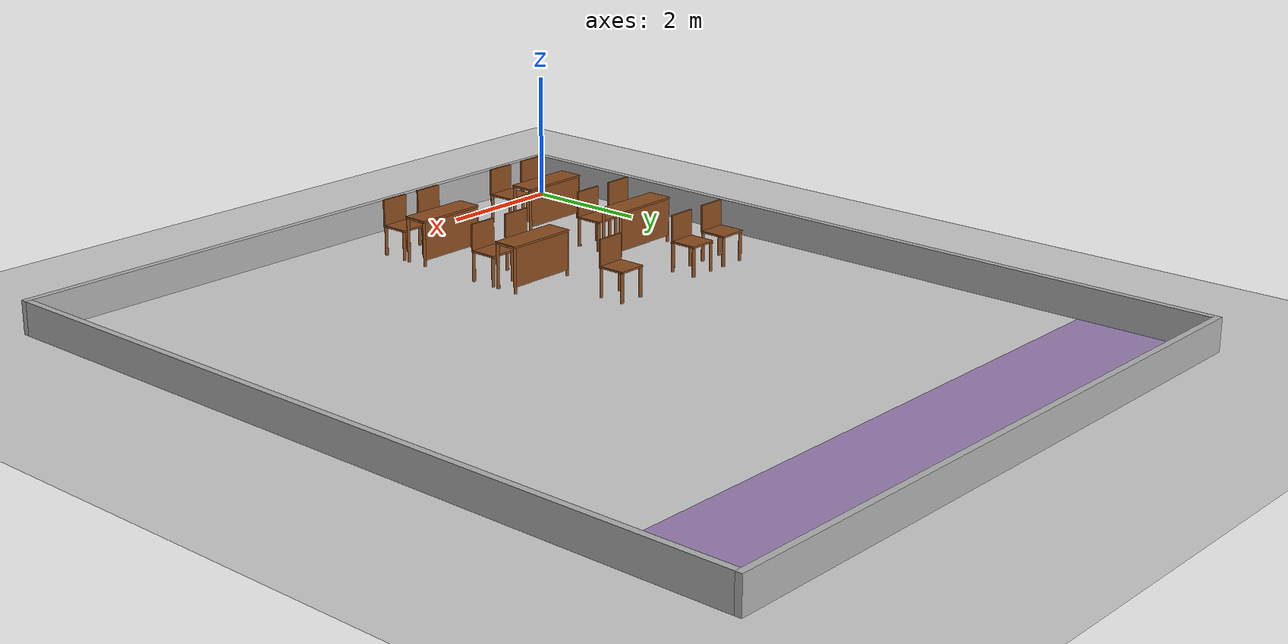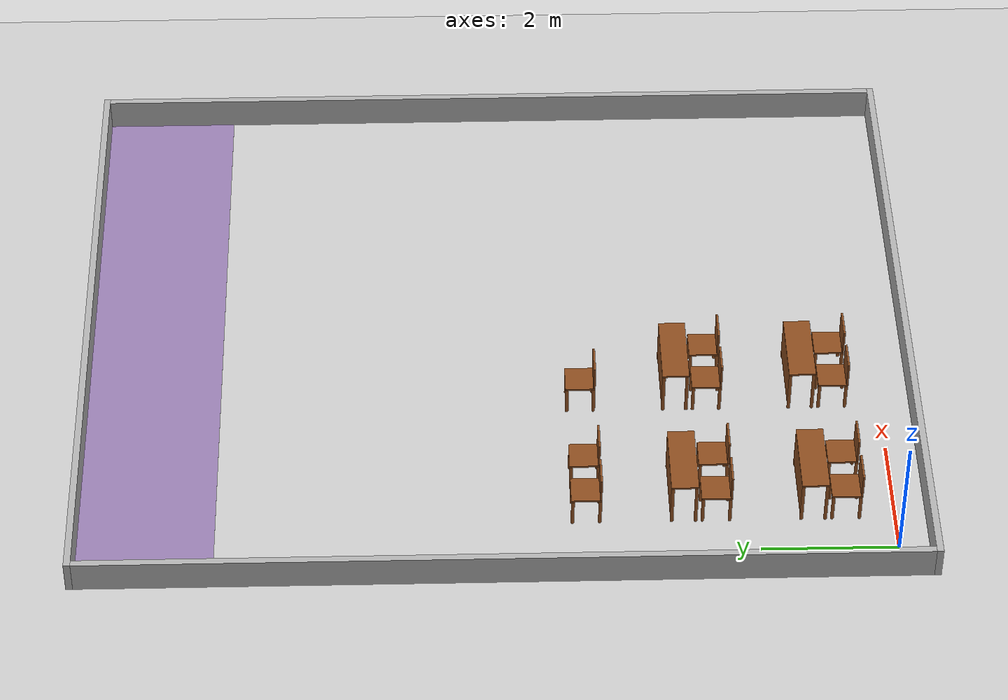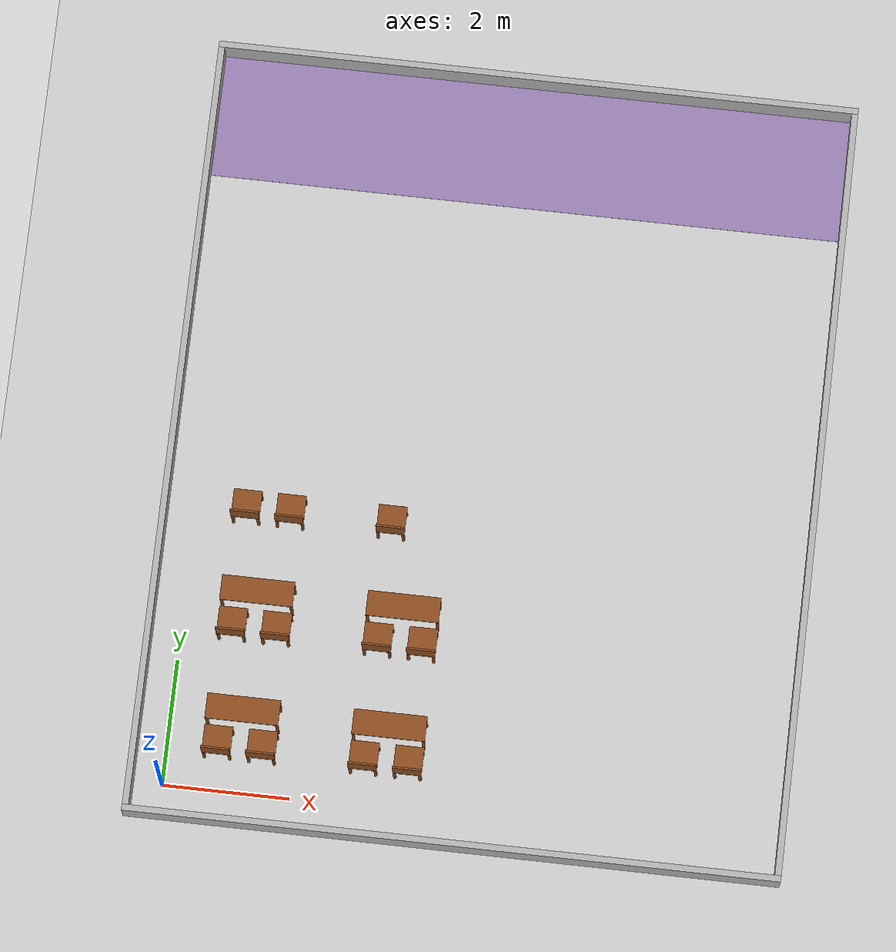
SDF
<sdf version="1.6">
 <world name="lecture_hall">
  <include><uri>model://ground_plane</uri></include>
  <include><uri>model://sun</uri></include>
  <model name="walls">
   <static>true</static>
   <link name="link">
    <collision name="c_s">
     <pose>4.600 -0.500 0.250 0 0 0</pose>
     <geometry><box><size>10.300 0.100 0.500</size></box></geometry>
    </collision>
    <visual name="v_s">
     <pose>4.600 -0.500 0.250 0 0 0</pose>
     <geometry><box><size>10.300 0.100 0.500</size></box></geometry>
     <material><ambient>0.6 0.6 0.6 1</ambient><diffuse>0.7 0.7 0.7 1</diffuse></material>
    </visual>
    <collision name="c_n">
     <pose>4.600 12.000 0.250 0 0 0</pose>
     <geometry><box><size>10.300 0.100 0.500</size></box></geometry>
    </collision>
    <visual name="v_n">
     <pose>4.600 12.000 0.250 0 0 0</pose>
     <geometry><box><size>10.300 0.100 0.500</size></box></geometry>
     <material><ambient>0.6 0.6 0.6 1</ambient><diffuse>0.7 0.7 0.7 1</diffuse></material>
    </visual>
    <collision name="c_w">
     <pose>-0.500 5.750 0.250 0 0 0</pose>
     <geometry><box><size>0.100 12.400 0.500</size></box></geometry>
    </collision>
    <visual name="v_w">
     <pose>-0.500 5.750 0.250 0 0 0</pose>
     <geometry><box><size>0.100 12.400 0.500</size></box></geometry>
     <material><ambient>0.6 0.6 0.6 1</ambient><diffuse>0.7 0.7 0.7 1</diffuse></material>
    </visual>
    <collision name="c_e">
     <pose>9.700 5.750 0.250 0 0 0</pose>
     <geometry><box><size>0.100 12.400 0.500</size></box></geometry>
    </collision>
    <visual name="v_e">
     <pose>9.700 5.750 0.250 0 0 0</pose>
     <geometry><box><size>0.100 12.400 0.500</size></box></geometry>
     <material><ambient>0.6 0.6 0.6 1</ambient><diffuse>0.7 0.7 0.7 1</diffuse></material>
    </visual>
    <visual name="v_stage">
     <pose>4.600 10.950 0.002 0 0 0</pose>
     <geometry><box><size>10.100 2.000 0.004</size></box></geometry>
     <material><ambient>0.5 0.4 0.6 1</ambient><diffuse>0.6 0.5 0.7 1</diffuse></material>
    </visual>
   </link>
  </model>
  <model name="chair_3_1_1">
   <static>true</static>
   <pose>0.800 4.525 0 0 0 0</pose>
   <link name="link">
    <collision name="c_leg0">
     <pose>-0.200 -0.200 0.225 0 0 0</pose>
     <geometry><cylinder><radius>0.025</radius><length>0.450</length></cylinder></geometry>
    </collision>
    <visual name="v_leg0">
     <pose>-0.200 -0.200 0.225 0 0 0</pose>
     <geometry><cylinder><radius>0.025</radius><length>0.450</length></cylinder></geometry>
     <material><ambient>0.45 0.25 0.1 1</ambient><diffuse>0.55 0.3 0.12 1</diffuse></material>
    </visual>
    <collision name="c_leg1">
     <pose>-0.200 0.200 0.225 0 0 0</pose>
     <geometry><cylinder><radius>0.025</radius><length>0.450</length></cylinder></geometry>
    </collision>
    <visual name="v_leg1">
     <pose>-0.200 0.200 0.225 0 0 0</pose>
     <geometry><cylinder><radius>0.025</radius><length>0.450</length></cylinder></geometry>
     <material><ambient>0.45 0.25 0.1 1</ambient><diffuse>0.55 0.3 0.12 1</diffuse></material>
    </visual>
    <collision name="c_leg2">
     <pose>0.200 -0.200 0.225 0 0 0</pose>
     <geometry><cylinder><radius>0.025</radius><length>0.450</length></cylinder></geometry>
    </collision>
    <visual name="v_leg2">
     <pose>0.200 -0.200 0.225 0 0 0</pose>
     <geometry><cylinder><radius>0.025</radius><length>0.450</length></cylinder></geometry>
     <material><ambient>0.45 0.25 0.1 1</ambient><diffuse>0.55 0.3 0.12 1</diffuse></material>
    </visual>
    <collision name="c_leg3">
     <pose>0.200 0.200 0.225 0 0 0</pose>
     <geometry><cylinder><radius>0.025</radius><length>0.450</length></cylinder></geometry>
    </collision>
    <visual name="v_leg3">
     <pose>0.200 0.200 0.225 0 0 0</pose>
     <geometry><cylinder><radius>0.025</radius><length>0.450</length></cylinder></geometry>
     <material><ambient>0.45 0.25 0.1 1</ambient><diffuse>0.55 0.3 0.12 1</diffuse></material>
    </visual>
    <collision name="c_seat">
     <pose>0.000 0.000 0.465 0 0 0</pose>
     <geometry><box><size>0.450 0.450 0.030</size></box></geometry>
    </collision>
    <visual name="v_seat">
     <pose>0.000 0.000 0.465 0 0 0</pose>
     <geometry><box><size>0.450 0.450 0.030</size></box></geometry>
     <material><ambient>0.45 0.25 0.1 1</ambient><diffuse>0.55 0.3 0.12 1</diffuse></material>
    </visual>
    <collision name="c_back">
     <pose>0.000 -0.210 0.680 0 0 0</pose>
     <geometry><box><size>0.450 0.030 0.400</size></box></geometry>
    </collision>
    <visual name="v_back">
     <pose>0.000 -0.210 0.680 0 0 0</pose>
     <geometry><box><size>0.450 0.030 0.400</size></box></geometry>
     <material><ambient>0.45 0.25 0.1 1</ambient><diffuse>0.55 0.3 0.12 1</diffuse></material>
    </visual>
   </link>
  </model>
  <model name="chair_3_1_2">
   <static>true</static>
   <pose>1.500 4.525 0 0 0 0</pose>
   <link name="link">
    <collision name="c_leg0">
     <pose>-0.200 -0.200 0.225 0 0 0</pose>
     <geometry><cylinder><radius>0.025</radius><length>0.450</length></cylinder></geometry>
    </collision>
    <visual name="v_leg0">
     <pose>-0.200 -0.200 0.225 0 0 0</pose>
     <geometry><cylinder><radius>0.025</radius><length>0.450</length></cylinder></geometry>
     <material><ambient>0.45 0.25 0.1 1</ambient><diffuse>0.55 0.3 0.12 1</diffuse></material>
    </visual>
    <collision name="c_leg1">
     <pose>-0.200 0.200 0.225 0 0 0</pose>
     <geometry><cylinder><radius>0.025</radius><length>0.450</length></cylinder></geometry>
    </collision>
    <visual name="v_leg1">
     <pose>-0.200 0.200 0.225 0 0 0</pose>
     <geometry><cylinder><radius>0.025</radius><length>0.450</length></cylinder></geometry>
     <material><ambient>0.45 0.25 0.1 1</ambient><diffuse>0.55 0.3 0.12 1</diffuse></material>
    </visual>
    <collision name="c_leg2">
     <pose>0.200 -0.200 0.225 0 0 0</pose>
     <geometry><cylinder><radius>0.025</radius><length>0.450</length></cylinder></geometry>
    </collision>
    <visual name="v_leg2">
     <pose>0.200 -0.200 0.225 0 0 0</pose>
     <geometry><cylinder><radius>0.025</radius><length>0.450</length></cylinder></geometry>
     <material><ambient>0.45 0.25 0.1 1</ambient><diffuse>0.55 0.3 0.12 1</diffuse></material>
    </visual>
    <collision name="c_leg3">
     <pose>0.200 0.200 0.225 0 0 0</pose>
     <geometry><cylinder><radius>0.025</radius><length>0.450</length></cylinder></geometry>
    </collision>
    <visual name="v_leg3">
     <pose>0.200 0.200 0.225 0 0 0</pose>
     <geometry><cylinder><radius>0.025</radius><length>0.450</length></cylinder></geometry>
     <material><ambient>0.45 0.25 0.1 1</ambient><diffuse>0.55 0.3 0.12 1</diffuse></material>
    </visual>
    <collision name="c_seat">
     <pose>0.000 0.000 0.465 0 0 0</pose>
     <geometry><box><size>0.450 0.450 0.030</size></box></geometry>
    </collision>
    <visual name="v_seat">
     <pose>0.000 0.000 0.465 0 0 0</pose>
     <geometry><box><size>0.450 0.450 0.030</size></box></geometry>
     <material><ambient>0.45 0.25 0.1 1</ambient><diffuse>0.55 0.3 0.12 1</diffuse></material>
    </visual>
    <collision name="c_back">
     <pose>0.000 -0.210 0.680 0 0 0</pose>
     <geometry><box><size>0.450 0.030 0.400</size></box></geometry>
    </collision>
    <visual name="v_back">
     <pose>0.000 -0.210 0.680 0 0 0</pose>
     <geometry><box><size>0.450 0.030 0.400</size></box></geometry>
     <material><ambient>0.45 0.25 0.1 1</ambient><diffuse>0.55 0.3 0.12 1</diffuse></material>
    </visual>
   </link>
  </model>
  <model name="chair_3_2_1">
   <static>true</static>
   <pose>3.100 4.525 0 0 0 0</pose>
   <link name="link">
    <collision name="c_leg0">
     <pose>-0.200 -0.200 0.225 0 0 0</pose>
     <geometry><cylinder><radius>0.025</radius><length>0.450</length></cylinder></geometry>
    </collision>
    <visual name="v_leg0">
     <pose>-0.200 -0.200 0.225 0 0 0</pose>
     <geometry><cylinder><radius>0.025</radius><length>0.450</length></cylinder></geometry>
     <material><ambient>0.45 0.25 0.1 1</ambient><diffuse>0.55 0.3 0.12 1</diffuse></material>
    </visual>
    <collision name="c_leg1">
     <pose>-0.200 0.200 0.225 0 0 0</pose>
     <geometry><cylinder><radius>0.025</radius><length>0.450</length></cylinder></geometry>
    </collision>
    <visual name="v_leg1">
     <pose>-0.200 0.200 0.225 0 0 0</pose>
     <geometry><cylinder><radius>0.025</radius><length>0.450</length></cylinder></geometry>
     <material><ambient>0.45 0.25 0.1 1</ambient><diffuse>0.55 0.3 0.12 1</diffuse></material>
    </visual>
    <collision name="c_leg2">
     <pose>0.200 -0.200 0.225 0 0 0</pose>
     <geometry><cylinder><radius>0.025</radius><length>0.450</length></cylinder></geometry>
    </collision>
    <visual name="v_leg2">
     <pose>0.200 -0.200 0.225 0 0 0</pose>
     <geometry><cylinder><radius>0.025</radius><length>0.450</length></cylinder></geometry>
     <material><ambient>0.45 0.25 0.1 1</ambient><diffuse>0.55 0.3 0.12 1</diffuse></material>
    </visual>
    <collision name="c_leg3">
     <pose>0.200 0.200 0.225 0 0 0</pose>
     <geometry><cylinder><radius>0.025</radius><length>0.450</length></cylinder></geometry>
    </collision>
    <visual name="v_leg3">
     <pose>0.200 0.200 0.225 0 0 0</pose>
     <geometry><cylinder><radius>0.025</radius><length>0.450</length></cylinder></geometry>
     <material><ambient>0.45 0.25 0.1 1</ambient><diffuse>0.55 0.3 0.12 1</diffuse></material>
    </visual>
    <collision name="c_seat">
     <pose>0.000 0.000 0.465 0 0 0</pose>
     <geometry><box><size>0.450 0.450 0.030</size></box></geometry>
    </collision>
    <visual name="v_seat">
     <pose>0.000 0.000 0.465 0 0 0</pose>
     <geometry><box><size>0.450 0.450 0.030</size></box></geometry>
     <material><ambient>0.45 0.25 0.1 1</ambient><diffuse>0.55 0.3 0.12 1</diffuse></material>
    </visual>
    <collision name="c_back">
     <pose>0.000 -0.210 0.680 0 0 0</pose>
     <geometry><box><size>0.450 0.030 0.400</size></box></geometry>
    </collision>
    <visual name="v_back">
     <pose>0.000 -0.210 0.680 0 0 0</pose>
     <geometry><box><size>0.450 0.030 0.400</size></box></geometry>
     <material><ambient>0.45 0.25 0.1 1</ambient><diffuse>0.55 0.3 0.12 1</diffuse></material>
    </visual>
   </link>
  </model>
  <model name="desk_4_1">
   <static>true</static>
   <pose>1.150 3.100 0 0 0 0</pose>
   <link name="link">
    <collision name="c_leg0">
     <pose>-0.550 -0.175 0.345 0 0 0</pose>
     <geometry><cylinder><radius>0.025</radius><length>0.690</length></cylinder></geometry>
    </collision>
    <visual name="v_leg0">
     <pose>-0.550 -0.175 0.345 0 0 0</pose>
     <geometry><cylinder><radius>0.025</radius><length>0.690</length></cylinder></geometry>
     <material><ambient>0.45 0.25 0.1 1</ambient><diffuse>0.55 0.3 0.12 1</diffuse></material>
    </visual>
    <collision name="c_leg1">
     <pose>-0.550 0.175 0.345 0 0 0</pose>
     <geometry><cylinder><radius>0.025</radius><length>0.690</length></cylinder></geometry>
    </collision>
    <visual name="v_leg1">
     <pose>-0.550 0.175 0.345 0 0 0</pose>
     <geometry><cylinder><radius>0.025</radius><length>0.690</length></cylinder></geometry>
     <material><ambient>0.45 0.25 0.1 1</ambient><diffuse>0.55 0.3 0.12 1</diffuse></material>
    </visual>
    <collision name="c_leg2">
     <pose>0.550 -0.175 0.345 0 0 0</pose>
     <geometry><cylinder><radius>0.025</radius><length>0.690</length></cylinder></geometry>
    </collision>
    <visual name="v_leg2">
     <pose>0.550 -0.175 0.345 0 0 0</pose>
     <geometry><cylinder><radius>0.025</radius><length>0.690</length></cylinder></geometry>
     <material><ambient>0.45 0.25 0.1 1</ambient><diffuse>0.55 0.3 0.12 1</diffuse></material>
    </visual>
    <collision name="c_leg3">
     <pose>0.550 0.175 0.345 0 0 0</pose>
     <geometry><cylinder><radius>0.025</radius><length>0.690</length></cylinder></geometry>
    </collision>
    <visual name="v_leg3">
     <pose>0.550 0.175 0.345 0 0 0</pose>
     <geometry><cylinder><radius>0.025</radius><length>0.690</length></cylinder></geometry>
     <material><ambient>0.45 0.25 0.1 1</ambient><diffuse>0.55 0.3 0.12 1</diffuse></material>
    </visual>
    <collision name="c_top">
     <pose>0.000 0.000 0.705 0 0 0</pose>
     <geometry><box><size>1.150 0.400 0.030</size></box></geometry>
    </collision>
    <visual name="v_top">
     <pose>0.000 0.000 0.705 0 0 0</pose>
     <geometry><box><size>1.150 0.400 0.030</size></box></geometry>
     <material><ambient>0.45 0.25 0.1 1</ambient><diffuse>0.55 0.3 0.12 1</diffuse></material>
    </visual>
    <collision name="c_panel">
     <pose>0.000 0.190 0.395 0 0 0</pose>
     <geometry><box><size>1.100 0.020 0.590</size></box></geometry>
    </collision>
    <visual name="v_panel">
     <pose>0.000 0.190 0.395 0 0 0</pose>
     <geometry><box><size>1.100 0.020 0.590</size></box></geometry>
     <material><ambient>0.45 0.25 0.1 1</ambient><diffuse>0.55 0.3 0.12 1</diffuse></material>
    </visual>
   </link>
  </model>
  <model name="chair_4_1_1">
   <static>true</static>
   <pose>0.800 2.625 0 0 0 0</pose>
   <link name="link">
    <collision name="c_leg0">
     <pose>-0.200 -0.200 0.225 0 0 0</pose>
     <geometry><cylinder><radius>0.025</radius><length>0.450</length></cylinder></geometry>
    </collision>
    <visual name="v_leg0">
     <pose>-0.200 -0.200 0.225 0 0 0</pose>
     <geometry><cylinder><radius>0.025</radius><length>0.450</length></cylinder></geometry>
     <material><ambient>0.45 0.25 0.1 1</ambient><diffuse>0.55 0.3 0.12 1</diffuse></material>
    </visual>
    <collision name="c_leg1">
     <pose>-0.200 0.200 0.225 0 0 0</pose>
     <geometry><cylinder><radius>0.025</radius><length>0.450</length></cylinder></geometry>
    </collision>
    <visual name="v_leg1">
     <pose>-0.200 0.200 0.225 0 0 0</pose>
     <geometry><cylinder><radius>0.025</radius><length>0.450</length></cylinder></geometry>
     <material><ambient>0.45 0.25 0.1 1</ambient><diffuse>0.55 0.3 0.12 1</diffuse></material>
    </visual>
    <collision name="c_leg2">
     <pose>0.200 -0.200 0.225 0 0 0</pose>
     <geometry><cylinder><radius>0.025</radius><length>0.450</length></cylinder></geometry>
    </collision>
    <visual name="v_leg2">
     <pose>0.200 -0.200 0.225 0 0 0</pose>
     <geometry><cylinder><radius>0.025</radius><length>0.450</length></cylinder></geometry>
     <material><ambient>0.45 0.25 0.1 1</ambient><diffuse>0.55 0.3 0.12 1</diffuse></material>
    </visual>
    <collision name="c_leg3">
     <pose>0.200 0.200 0.225 0 0 0</pose>
     <geometry><cylinder><radius>0.025</radius><length>0.450</length></cylinder></geometry>
    </collision>
    <visual name="v_leg3">
     <pose>0.200 0.200 0.225 0 0 0</pose>
     <geometry><cylinder><radius>0.025</radius><length>0.450</length></cylinder></geometry>
     <material><ambient>0.45 0.25 0.1 1</ambient><diffuse>0.55 0.3 0.12 1</diffuse></material>
    </visual>
    <collision name="c_seat">
     <pose>0.000 0.000 0.465 0 0 0</pose>
     <geometry><box><size>0.450 0.450 0.030</size></box></geometry>
    </collision>
    <visual name="v_seat">
     <pose>0.000 0.000 0.465 0 0 0</pose>
     <geometry><box><size>0.450 0.450 0.030</size></box></geometry>
     <material><ambient>0.45 0.25 0.1 1</ambient><diffuse>0.55 0.3 0.12 1</diffuse></material>
    </visual>
    <collision name="c_back">
     <pose>0.000 -0.210 0.680 0 0 0</pose>
     <geometry><box><size>0.450 0.030 0.400</size></box></geometry>
    </collision>
    <visual name="v_back">
     <pose>0.000 -0.210 0.680 0 0 0</pose>
     <geometry><box><size>0.450 0.030 0.400</size></box></geometry>
     <material><ambient>0.45 0.25 0.1 1</ambient><diffuse>0.55 0.3 0.12 1</diffuse></material>
    </visual>
   </link>
  </model>
  <model name="chair_4_1_2">
   <static>true</static>
   <pose>1.500 2.625 0 0 0 0</pose>
   <link name="link">
    <collision name="c_leg0">
     <pose>-0.200 -0.200 0.225 0 0 0</pose>
     <geometry><cylinder><radius>0.025</radius><length>0.450</length></cylinder></geometry>
    </collision>
    <visual name="v_leg0">
     <pose>-0.200 -0.200 0.225 0 0 0</pose>
     <geometry><cylinder><radius>0.025</radius><length>0.450</length></cylinder></geometry>
     <material><ambient>0.45 0.25 0.1 1</ambient><diffuse>0.55 0.3 0.12 1</diffuse></material>
    </visual>
    <collision name="c_leg1">
     <pose>-0.200 0.200 0.225 0 0 0</pose>
     <geometry><cylinder><radius>0.025</radius><length>0.450</length></cylinder></geometry>
    </collision>
    <visual name="v_leg1">
     <pose>-0.200 0.200 0.225 0 0 0</pose>
     <geometry><cylinder><radius>0.025</radius><length>0.450</length></cylinder></geometry>
     <material><ambient>0.45 0.25 0.1 1</ambient><diffuse>0.55 0.3 0.12 1</diffuse></material>
    </visual>
    <collision name="c_leg2">
     <pose>0.200 -0.200 0.225 0 0 0</pose>
     <geometry><cylinder><radius>0.025</radius><length>0.450</length></cylinder></geometry>
    </collision>
    <visual name="v_leg2">
     <pose>0.200 -0.200 0.225 0 0 0</pose>
     <geometry><cylinder><radius>0.025</radius><length>0.450</length></cylinder></geometry>
     <material><ambient>0.45 0.25 0.1 1</ambient><diffuse>0.55 0.3 0.12 1</diffuse></material>
    </visual>
    <collision name="c_leg3">
     <pose>0.200 0.200 0.225 0 0 0</pose>
     <geometry><cylinder><radius>0.025</radius><length>0.450</length></cylinder></geometry>
    </collision>
    <visual name="v_leg3">
     <pose>0.200 0.200 0.225 0 0 0</pose>
     <geometry><cylinder><radius>0.025</radius><length>0.450</length></cylinder></geometry>
     <material><ambient>0.45 0.25 0.1 1</ambient><diffuse>0.55 0.3 0.12 1</diffuse></material>
    </visual>
    <collision name="c_seat">
     <pose>0.000 0.000 0.465 0 0 0</pose>
     <geometry><box><size>0.450 0.450 0.030</size></box></geometry>
    </collision>
    <visual name="v_seat">
     <pose>0.000 0.000 0.465 0 0 0</pose>
     <geometry><box><size>0.450 0.450 0.030</size></box></geometry>
     <material><ambient>0.45 0.25 0.1 1</ambient><diffuse>0.55 0.3 0.12 1</diffuse></material>
    </visual>
    <collision name="c_back">
     <pose>0.000 -0.210 0.680 0 0 0</pose>
     <geometry><box><size>0.450 0.030 0.400</size></box></geometry>
    </collision>
    <visual name="v_back">
     <pose>0.000 -0.210 0.680 0 0 0</pose>
     <geometry><box><size>0.450 0.030 0.400</size></box></geometry>
     <material><ambient>0.45 0.25 0.1 1</ambient><diffuse>0.55 0.3 0.12 1</diffuse></material>
    </visual>
   </link>
  </model>
  <model name="desk_4_2">
   <static>true</static>
   <pose>3.450 3.100 0 0 0 0</pose>
   <link name="link">
    <collision name="c_leg0">
     <pose>-0.550 -0.175 0.345 0 0 0</pose>
     <geometry><cylinder><radius>0.025</radius><length>0.690</length></cylinder></geometry>
    </collision>
    <visual name="v_leg0">
     <pose>-0.550 -0.175 0.345 0 0 0</pose>
     <geometry><cylinder><radius>0.025</radius><length>0.690</length></cylinder></geometry>
     <material><ambient>0.45 0.25 0.1 1</ambient><diffuse>0.55 0.3 0.12 1</diffuse></material>
    </visual>
    <collision name="c_leg1">
     <pose>-0.550 0.175 0.345 0 0 0</pose>
     <geometry><cylinder><radius>0.025</radius><length>0.690</length></cylinder></geometry>
    </collision>
    <visual name="v_leg1">
     <pose>-0.550 0.175 0.345 0 0 0</pose>
     <geometry><cylinder><radius>0.025</radius><length>0.690</length></cylinder></geometry>
     <material><ambient>0.45 0.25 0.1 1</ambient><diffuse>0.55 0.3 0.12 1</diffuse></material>
    </visual>
    <collision name="c_leg2">
     <pose>0.550 -0.175 0.345 0 0 0</pose>
     <geometry><cylinder><radius>0.025</radius><length>0.690</length></cylinder></geometry>
    </collision>
    <visual name="v_leg2">
     <pose>0.550 -0.175 0.345 0 0 0</pose>
     <geometry><cylinder><radius>0.025</radius><length>0.690</length></cylinder></geometry>
     <material><ambient>0.45 0.25 0.1 1</ambient><diffuse>0.55 0.3 0.12 1</diffuse></material>
    </visual>
    <collision name="c_leg3">
     <pose>0.550 0.175 0.345 0 0 0</pose>
     <geometry><cylinder><radius>0.025</radius><length>0.690</length></cylinder></geometry>
    </collision>
    <visual name="v_leg3">
     <pose>0.550 0.175 0.345 0 0 0</pose>
     <geometry><cylinder><radius>0.025</radius><length>0.690</length></cylinder></geometry>
     <material><ambient>0.45 0.25 0.1 1</ambient><diffuse>0.55 0.3 0.12 1</diffuse></material>
    </visual>
    <collision name="c_top">
     <pose>0.000 0.000 0.705 0 0 0</pose>
     <geometry><box><size>1.150 0.400 0.030</size></box></geometry>
    </collision>
    <visual name="v_top">
     <pose>0.000 0.000 0.705 0 0 0</pose>
     <geometry><box><size>1.150 0.400 0.030</size></box></geometry>
     <material><ambient>0.45 0.25 0.1 1</ambient><diffuse>0.55 0.3 0.12 1</diffuse></material>
    </visual>
    <collision name="c_panel">
     <pose>0.000 0.190 0.395 0 0 0</pose>
     <geometry><box><size>1.100 0.020 0.590</size></box></geometry>
    </collision>
    <visual name="v_panel">
     <pose>0.000 0.190 0.395 0 0 0</pose>
     <geometry><box><size>1.100 0.020 0.590</size></box></geometry>
     <material><ambient>0.45 0.25 0.1 1</ambient><diffuse>0.55 0.3 0.12 1</diffuse></material>
    </visual>
   </link>
  </model>
  <model name="chair_4_2_1">
   <static>true</static>
   <pose>3.100 2.625 0 0 0 0</pose>
   <link name="link">
    <collision name="c_leg0">
     <pose>-0.200 -0.200 0.225 0 0 0</pose>
     <geometry><cylinder><radius>0.025</radius><length>0.450</length></cylinder></geometry>
    </collision>
    <visual name="v_leg0">
     <pose>-0.200 -0.200 0.225 0 0 0</pose>
     <geometry><cylinder><radius>0.025</radius><length>0.450</length></cylinder></geometry>
     <material><ambient>0.45 0.25 0.1 1</ambient><diffuse>0.55 0.3 0.12 1</diffuse></material>
    </visual>
    <collision name="c_leg1">
     <pose>-0.200 0.200 0.225 0 0 0</pose>
     <geometry><cylinder><radius>0.025</radius><length>0.450</length></cylinder></geometry>
    </collision>
    <visual name="v_leg1">
     <pose>-0.200 0.200 0.225 0 0 0</pose>
     <geometry><cylinder><radius>0.025</radius><length>0.450</length></cylinder></geometry>
     <material><ambient>0.45 0.25 0.1 1</ambient><diffuse>0.55 0.3 0.12 1</diffuse></material>
    </visual>
    <collision name="c_leg2">
     <pose>0.200 -0.200 0.225 0 0 0</pose>
     <geometry><cylinder><radius>0.025</radius><length>0.450</length></cylinder></geometry>
    </collision>
    <visual name="v_leg2">
     <pose>0.200 -0.200 0.225 0 0 0</pose>
     <geometry><cylinder><radius>0.025</radius><length>0.450</length></cylinder></geometry>
     <material><ambient>0.45 0.25 0.1 1</ambient><diffuse>0.55 0.3 0.12 1</diffuse></material>
    </visual>
    <collision name="c_leg3">
     <pose>0.200 0.200 0.225 0 0 0</pose>
     <geometry><cylinder><radius>0.025</radius><length>0.450</length></cylinder></geometry>
    </collision>
    <visual name="v_leg3">
     <pose>0.200 0.200 0.225 0 0 0</pose>
     <geometry><cylinder><radius>0.025</radius><length>0.450</length></cylinder></geometry>
     <material><ambient>0.45 0.25 0.1 1</ambient><diffuse>0.55 0.3 0.12 1</diffuse></material>
    </visual>
    <collision name="c_seat">
     <pose>0.000 0.000 0.465 0 0 0</pose>
     <geometry><box><size>0.450 0.450 0.030</size></box></geometry>
    </collision>
    <visual name="v_seat">
     <pose>0.000 0.000 0.465 0 0 0</pose>
     <geometry><box><size>0.450 0.450 0.030</size></box></geometry>
     <material><ambient>0.45 0.25 0.1 1</ambient><diffuse>0.55 0.3 0.12 1</diffuse></material>
    </visual>
    <collision name="c_back">
     <pose>0.000 -0.210 0.680 0 0 0</pose>
     <geometry><box><size>0.450 0.030 0.400</size></box></geometry>
    </collision>
    <visual name="v_back">
     <pose>0.000 -0.210 0.680 0 0 0</pose>
     <geometry><box><size>0.450 0.030 0.400</size></box></geometry>
     <material><ambient>0.45 0.25 0.1 1</ambient><diffuse>0.55 0.3 0.12 1</diffuse></material>
    </visual>
   </link>
  </model>
  <model name="chair_4_2_2">
   <static>true</static>
   <pose>3.800 2.625 0 0 0 0</pose>
   <link name="link">
    <collision name="c_leg0">
     <pose>-0.200 -0.200 0.225 0 0 0</pose>
     <geometry><cylinder><radius>0.025</radius><length>0.450</length></cylinder></geometry>
    </collision>
    <visual name="v_leg0">
     <pose>-0.200 -0.200 0.225 0 0 0</pose>
     <geometry><cylinder><radius>0.025</radius><length>0.450</length></cylinder></geometry>
     <material><ambient>0.45 0.25 0.1 1</ambient><diffuse>0.55 0.3 0.12 1</diffuse></material>
    </visual>
    <collision name="c_leg1">
     <pose>-0.200 0.200 0.225 0 0 0</pose>
     <geometry><cylinder><radius>0.025</radius><length>0.450</length></cylinder></geometry>
    </collision>
    <visual name="v_leg1">
     <pose>-0.200 0.200 0.225 0 0 0</pose>
     <geometry><cylinder><radius>0.025</radius><length>0.450</length></cylinder></geometry>
     <material><ambient>0.45 0.25 0.1 1</ambient><diffuse>0.55 0.3 0.12 1</diffuse></material>
    </visual>
    <collision name="c_leg2">
     <pose>0.200 -0.200 0.225 0 0 0</pose>
     <geometry><cylinder><radius>0.025</radius><length>0.450</length></cylinder></geometry>
    </collision>
    <visual name="v_leg2">
     <pose>0.200 -0.200 0.225 0 0 0</pose>
     <geometry><cylinder><radius>0.025</radius><length>0.450</length></cylinder></geometry>
     <material><ambient>0.45 0.25 0.1 1</ambient><diffuse>0.55 0.3 0.12 1</diffuse></material>
    </visual>
    <collision name="c_leg3">
     <pose>0.200 0.200 0.225 0 0 0</pose>
     <geometry><cylinder><radius>0.025</radius><length>0.450</length></cylinder></geometry>
    </collision>
    <visual name="v_leg3">
     <pose>0.200 0.200 0.225 0 0 0</pose>
     <geometry><cylinder><radius>0.025</radius><length>0.450</length></cylinder></geometry>
     <material><ambient>0.45 0.25 0.1 1</ambient><diffuse>0.55 0.3 0.12 1</diffuse></material>
    </visual>
    <collision name="c_seat">
     <pose>0.000 0.000 0.465 0 0 0</pose>
     <geometry><box><size>0.450 0.450 0.030</size></box></geometry>
    </collision>
    <visual name="v_seat">
     <pose>0.000 0.000 0.465 0 0 0</pose>
     <geometry><box><size>0.450 0.450 0.030</size></box></geometry>
     <material><ambient>0.45 0.25 0.1 1</ambient><diffuse>0.55 0.3 0.12 1</diffuse></material>
    </visual>
    <collision name="c_back">
     <pose>0.000 -0.210 0.680 0 0 0</pose>
     <geometry><box><size>0.450 0.030 0.400</size></box></geometry>
    </collision>
    <visual name="v_back">
     <pose>0.000 -0.210 0.680 0 0 0</pose>
     <geometry><box><size>0.450 0.030 0.400</size></box></geometry>
     <material><ambient>0.45 0.25 0.1 1</ambient><diffuse>0.55 0.3 0.12 1</diffuse></material>
    </visual>
   </link>
  </model>
  <model name="desk_5_1">
   <static>true</static>
   <pose>1.150 1.200 0 0 0 0</pose>
   <link name="link">
    <collision name="c_leg0">
     <pose>-0.550 -0.175 0.345 0 0 0</pose>
     <geometry><cylinder><radius>0.025</radius><length>0.690</length></cylinder></geometry>
    </collision>
    <visual name="v_leg0">
     <pose>-0.550 -0.175 0.345 0 0 0</pose>
     <geometry><cylinder><radius>0.025</radius><length>0.690</length></cylinder></geometry>
     <material><ambient>0.45 0.25 0.1 1</ambient><diffuse>0.55 0.3 0.12 1</diffuse></material>
    </visual>
    <collision name="c_leg1">
     <pose>-0.550 0.175 0.345 0 0 0</pose>
     <geometry><cylinder><radius>0.025</radius><length>0.690</length></cylinder></geometry>
    </collision>
    <visual name="v_leg1">
     <pose>-0.550 0.175 0.345 0 0 0</pose>
     <geometry><cylinder><radius>0.025</radius><length>0.690</length></cylinder></geometry>
     <material><ambient>0.45 0.25 0.1 1</ambient><diffuse>0.55 0.3 0.12 1</diffuse></material>
    </visual>
    <collision name="c_leg2">
     <pose>0.550 -0.175 0.345 0 0 0</pose>
     <geometry><cylinder><radius>0.025</radius><length>0.690</length></cylinder></geometry>
    </collision>
    <visual name="v_leg2">
     <pose>0.550 -0.175 0.345 0 0 0</pose>
     <geometry><cylinder><radius>0.025</radius><length>0.690</length></cylinder></geometry>
     <material><ambient>0.45 0.25 0.1 1</ambient><diffuse>0.55 0.3 0.12 1</diffuse></material>
    </visual>
    <collision name="c_leg3">
     <pose>0.550 0.175 0.345 0 0 0</pose>
     <geometry><cylinder><radius>0.025</radius><length>0.690</length></cylinder></geometry>
    </collision>
    <visual name="v_leg3">
     <pose>0.550 0.175 0.345 0 0 0</pose>
     <geometry><cylinder><radius>0.025</radius><length>0.690</length></cylinder></geometry>
     <material><ambient>0.45 0.25 0.1 1</ambient><diffuse>0.55 0.3 0.12 1</diffuse></material>
    </visual>
    <collision name="c_top">
     <pose>0.000 0.000 0.705 0 0 0</pose>
     <geometry><box><size>1.150 0.400 0.030</size></box></geometry>
    </collision>
    <visual name="v_top">
     <pose>0.000 0.000 0.705 0 0 0</pose>
     <geometry><box><size>1.150 0.400 0.030</size></box></geometry>
     <material><ambient>0.45 0.25 0.1 1</ambient><diffuse>0.55 0.3 0.12 1</diffuse></material>
    </visual>
    <collision name="c_panel">
     <pose>0.000 0.190 0.395 0 0 0</pose>
     <geometry><box><size>1.100 0.020 0.590</size></box></geometry>
    </collision>
    <visual name="v_panel">
     <pose>0.000 0.190 0.395 0 0 0</pose>
     <geometry><box><size>1.100 0.020 0.590</size></box></geometry>
     <material><ambient>0.45 0.25 0.1 1</ambient><diffuse>0.55 0.3 0.12 1</diffuse></material>
    </visual>
   </link>
  </model>
  <model name="chair_5_1_1">
   <static>true</static>
   <pose>0.800 0.725 0 0 0 0</pose>
   <link name="link">
    <collision name="c_leg0">
     <pose>-0.200 -0.200 0.225 0 0 0</pose>
     <geometry><cylinder><radius>0.025</radius><length>0.450</length></cylinder></geometry>
    </collision>
    <visual name="v_leg0">
     <pose>-0.200 -0.200 0.225 0 0 0</pose>
     <geometry><cylinder><radius>0.025</radius><length>0.450</length></cylinder></geometry>
     <material><ambient>0.45 0.25 0.1 1</ambient><diffuse>0.55 0.3 0.12 1</diffuse></material>
    </visual>
    <collision name="c_leg1">
     <pose>-0.200 0.200 0.225 0 0 0</pose>
     <geometry><cylinder><radius>0.025</radius><length>0.450</length></cylinder></geometry>
    </collision>
    <visual name="v_leg1">
     <pose>-0.200 0.200 0.225 0 0 0</pose>
     <geometry><cylinder><radius>0.025</radius><length>0.450</length></cylinder></geometry>
     <material><ambient>0.45 0.25 0.1 1</ambient><diffuse>0.55 0.3 0.12 1</diffuse></material>
    </visual>
    <collision name="c_leg2">
     <pose>0.200 -0.200 0.225 0 0 0</pose>
     <geometry><cylinder><radius>0.025</radius><length>0.450</length></cylinder></geometry>
    </collision>
    <visual name="v_leg2">
     <pose>0.200 -0.200 0.225 0 0 0</pose>
     <geometry><cylinder><radius>0.025</radius><length>0.450</length></cylinder></geometry>
     <material><ambient>0.45 0.25 0.1 1</ambient><diffuse>0.55 0.3 0.12 1</diffuse></material>
    </visual>
    <collision name="c_leg3">
     <pose>0.200 0.200 0.225 0 0 0</pose>
     <geometry><cylinder><radius>0.025</radius><length>0.450</length></cylinder></geometry>
    </collision>
    <visual name="v_leg3">
     <pose>0.200 0.200 0.225 0 0 0</pose>
     <geometry><cylinder><radius>0.025</radius><length>0.450</length></cylinder></geometry>
     <material><ambient>0.45 0.25 0.1 1</ambient><diffuse>0.55 0.3 0.12 1</diffuse></material>
    </visual>
    <collision name="c_seat">
     <pose>0.000 0.000 0.465 0 0 0</pose>
     <geometry><box><size>0.450 0.450 0.030</size></box></geometry>
    </collision>
    <visual name="v_seat">
     <pose>0.000 0.000 0.465 0 0 0</pose>
     <geometry><box><size>0.450 0.450 0.030</size></box></geometry>
     <material><ambient>0.45 0.25 0.1 1</ambient><diffuse>0.55 0.3 0.12 1</diffuse></material>
    </visual>
    <collision name="c_back">
     <pose>0.000 -0.210 0.680 0 0 0</pose>
     <geometry><box><size>0.450 0.030 0.400</size></box></geometry>
    </collision>
    <visual name="v_back">
     <pose>0.000 -0.210 0.680 0 0 0</pose>
     <geometry><box><size>0.450 0.030 0.400</size></box></geometry>
     <material><ambient>0.45 0.25 0.1 1</ambient><diffuse>0.55 0.3 0.12 1</diffuse></material>
    </visual>
   </link>
  </model>
  <model name="chair_5_1_2">
   <static>true</static>
   <pose>1.500 0.725 0 0 0 0</pose>
   <link name="link">
    <collision name="c_leg0">
     <pose>-0.200 -0.200 0.225 0 0 0</pose>
     <geometry><cylinder><radius>0.025</radius><length>0.450</length></cylinder></geometry>
    </collision>
    <visual name="v_leg0">
     <pose>-0.200 -0.200 0.225 0 0 0</pose>
     <geometry><cylinder><radius>0.025</radius><length>0.450</length></cylinder></geometry>
     <material><ambient>0.45 0.25 0.1 1</ambient><diffuse>0.55 0.3 0.12 1</diffuse></material>
    </visual>
    <collision name="c_leg1">
     <pose>-0.200 0.200 0.225 0 0 0</pose>
     <geometry><cylinder><radius>0.025</radius><length>0.450</length></cylinder></geometry>
    </collision>
    <visual name="v_leg1">
     <pose>-0.200 0.200 0.225 0 0 0</pose>
     <geometry><cylinder><radius>0.025</radius><length>0.450</length></cylinder></geometry>
     <material><ambient>0.45 0.25 0.1 1</ambient><diffuse>0.55 0.3 0.12 1</diffuse></material>
    </visual>
    <collision name="c_leg2">
     <pose>0.200 -0.200 0.225 0 0 0</pose>
     <geometry><cylinder><radius>0.025</radius><length>0.450</length></cylinder></geometry>
    </collision>
    <visual name="v_leg2">
     <pose>0.200 -0.200 0.225 0 0 0</pose>
     <geometry><cylinder><radius>0.025</radius><length>0.450</length></cylinder></geometry>
     <material><ambient>0.45 0.25 0.1 1</ambient><diffuse>0.55 0.3 0.12 1</diffuse></material>
    </visual>
    <collision name="c_leg3">
     <pose>0.200 0.200 0.225 0 0 0</pose>
     <geometry><cylinder><radius>0.025</radius><length>0.450</length></cylinder></geometry>
    </collision>
    <visual name="v_leg3">
     <pose>0.200 0.200 0.225 0 0 0</pose>
     <geometry><cylinder><radius>0.025</radius><length>0.450</length></cylinder></geometry>
     <material><ambient>0.45 0.25 0.1 1</ambient><diffuse>0.55 0.3 0.12 1</diffuse></material>
    </visual>
    <collision name="c_seat">
     <pose>0.000 0.000 0.465 0 0 0</pose>
     <geometry><box><size>0.450 0.450 0.030</size></box></geometry>
    </collision>
    <visual name="v_seat">
     <pose>0.000 0.000 0.465 0 0 0</pose>
     <geometry><box><size>0.450 0.450 0.030</size></box></geometry>
     <material><ambient>0.45 0.25 0.1 1</ambient><diffuse>0.55 0.3 0.12 1</diffuse></material>
    </visual>
    <collision name="c_back">
     <pose>0.000 -0.210 0.680 0 0 0</pose>
     <geometry><box><size>0.450 0.030 0.400</size></box></geometry>
    </collision>
    <visual name="v_back">
     <pose>0.000 -0.210 0.680 0 0 0</pose>
     <geometry><box><size>0.450 0.030 0.400</size></box></geometry>
     <material><ambient>0.45 0.25 0.1 1</ambient><diffuse>0.55 0.3 0.12 1</diffuse></material>
    </visual>
   </link>
  </model>
  <model name="desk_5_2">
   <static>true</static>
   <pose>3.450 1.200 0 0 0 0</pose>
   <link name="link">
    <collision name="c_leg0">
     <pose>-0.550 -0.175 0.345 0 0 0</pose>
     <geometry><cylinder><radius>0.025</radius><length>0.690</length></cylinder></geometry>
    </collision>
    <visual name="v_leg0">
     <pose>-0.550 -0.175 0.345 0 0 0</pose>
     <geometry><cylinder><radius>0.025</radius><length>0.690</length></cylinder></geometry>
     <material><ambient>0.45 0.25 0.1 1</ambient><diffuse>0.55 0.3 0.12 1</diffuse></material>
    </visual>
    <collision name="c_leg1">
     <pose>-0.550 0.175 0.345 0 0 0</pose>
     <geometry><cylinder><radius>0.025</radius><length>0.690</length></cylinder></geometry>
    </collision>
    <visual name="v_leg1">
     <pose>-0.550 0.175 0.345 0 0 0</pose>
     <geometry><cylinder><radius>0.025</radius><length>0.690</length></cylinder></geometry>
     <material><ambient>0.45 0.25 0.1 1</ambient><diffuse>0.55 0.3 0.12 1</diffuse></material>
    </visual>
    <collision name="c_leg2">
     <pose>0.550 -0.175 0.345 0 0 0</pose>
     <geometry><cylinder><radius>0.025</radius><length>0.690</length></cylinder></geometry>
    </collision>
    <visual name="v_leg2">
     <pose>0.550 -0.175 0.345 0 0 0</pose>
     <geometry><cylinder><radius>0.025</radius><length>0.690</length></cylinder></geometry>
     <material><ambient>0.45 0.25 0.1 1</ambient><diffuse>0.55 0.3 0.12 1</diffuse></material>
    </visual>
    <collision name="c_leg3">
     <pose>0.550 0.175 0.345 0 0 0</pose>
     <geometry><cylinder><radius>0.025</radius><length>0.690</length></cylinder></geometry>
    </collision>
    <visual name="v_leg3">
     <pose>0.550 0.175 0.345 0 0 0</pose>
     <geometry><cylinder><radius>0.025</radius><length>0.690</length></cylinder></geometry>
     <material><ambient>0.45 0.25 0.1 1</ambient><diffuse>0.55 0.3 0.12 1</diffuse></material>
    </visual>
    <collision name="c_top">
     <pose>0.000 0.000 0.705 0 0 0</pose>
     <geometry><box><size>1.150 0.400 0.030</size></box></geometry>
    </collision>
    <visual name="v_top">
     <pose>0.000 0.000 0.705 0 0 0</pose>
     <geometry><box><size>1.150 0.400 0.030</size></box></geometry>
     <material><ambient>0.45 0.25 0.1 1</ambient><diffuse>0.55 0.3 0.12 1</diffuse></material>
    </visual>
    <collision name="c_panel">
     <pose>0.000 0.190 0.395 0 0 0</pose>
     <geometry><box><size>1.100 0.020 0.590</size></box></geometry>
    </collision>
    <visual name="v_panel">
     <pose>0.000 0.190 0.395 0 0 0</pose>
     <geometry><box><size>1.100 0.020 0.590</size></box></geometry>
     <material><ambient>0.45 0.25 0.1 1</ambient><diffuse>0.55 0.3 0.12 1</diffuse></material>
    </visual>
   </link>
  </model>
  <model name="chair_5_2_1">
   <static>true</static>
   <pose>3.100 0.725 0 0 0 0</pose>
   <link name="link">
    <collision name="c_leg0">
     <pose>-0.200 -0.200 0.225 0 0 0</pose>
     <geometry><cylinder><radius>0.025</radius><length>0.450</length></cylinder></geometry>
    </collision>
    <visual name="v_leg0">
     <pose>-0.200 -0.200 0.225 0 0 0</pose>
     <geometry><cylinder><radius>0.025</radius><length>0.450</length></cylinder></geometry>
     <material><ambient>0.45 0.25 0.1 1</ambient><diffuse>0.55 0.3 0.12 1</diffuse></material>
    </visual>
    <collision name="c_leg1">
     <pose>-0.200 0.200 0.225 0 0 0</pose>
     <geometry><cylinder><radius>0.025</radius><length>0.450</length></cylinder></geometry>
    </collision>
    <visual name="v_leg1">
     <pose>-0.200 0.200 0.225 0 0 0</pose>
     <geometry><cylinder><radius>0.025</radius><length>0.450</length></cylinder></geometry>
     <material><ambient>0.45 0.25 0.1 1</ambient><diffuse>0.55 0.3 0.12 1</diffuse></material>
    </visual>
    <collision name="c_leg2">
     <pose>0.200 -0.200 0.225 0 0 0</pose>
     <geometry><cylinder><radius>0.025</radius><length>0.450</length></cylinder></geometry>
    </collision>
    <visual name="v_leg2">
     <pose>0.200 -0.200 0.225 0 0 0</pose>
     <geometry><cylinder><radius>0.025</radius><length>0.450</length></cylinder></geometry>
     <material><ambient>0.45 0.25 0.1 1</ambient><diffuse>0.55 0.3 0.12 1</diffuse></material>
    </visual>
    <collision name="c_leg3">
     <pose>0.200 0.200 0.225 0 0 0</pose>
     <geometry><cylinder><radius>0.025</radius><length>0.450</length></cylinder></geometry>
    </collision>
    <visual name="v_leg3">
     <pose>0.200 0.200 0.225 0 0 0</pose>
     <geometry><cylinder><radius>0.025</radius><length>0.450</length></cylinder></geometry>
     <material><ambient>0.45 0.25 0.1 1</ambient><diffuse>0.55 0.3 0.12 1</diffuse></material>
    </visual>
    <collision name="c_seat">
     <pose>0.000 0.000 0.465 0 0 0</pose>
     <geometry><box><size>0.450 0.450 0.030</size></box></geometry>
    </collision>
    <visual name="v_seat">
     <pose>0.000 0.000 0.465 0 0 0</pose>
     <geometry><box><size>0.450 0.450 0.030</size></box></geometry>
     <material><ambient>0.45 0.25 0.1 1</ambient><diffuse>0.55 0.3 0.12 1</diffuse></material>
    </visual>
    <collision name="c_back">
     <pose>0.000 -0.210 0.680 0 0 0</pose>
     <geometry><box><size>0.450 0.030 0.400</size></box></geometry>
    </collision>
    <visual name="v_back">
     <pose>0.000 -0.210 0.680 0 0 0</pose>
     <geometry><box><size>0.450 0.030 0.400</size></box></geometry>
     <material><ambient>0.45 0.25 0.1 1</ambient><diffuse>0.55 0.3 0.12 1</diffuse></material>
    </visual>
   </link>
  </model>
  <model name="chair_5_2_2">
   <static>true</static>
   <pose>3.800 0.725 0 0 0 0</pose>
   <link name="link">
    <collision name="c_leg0">
     <pose>-0.200 -0.200 0.225 0 0 0</pose>
     <geometry><cylinder><radius>0.025</radius><length>0.450</length></cylinder></geometry>
    </collision>
    <visual name="v_leg0">
     <pose>-0.200 -0.200 0.225 0 0 0</pose>
     <geometry><cylinder><radius>0.025</radius><length>0.450</length></cylinder></geometry>
     <material><ambient>0.45 0.25 0.1 1</ambient><diffuse>0.55 0.3 0.12 1</diffuse></material>
    </visual>
    <collision name="c_leg1">
     <pose>-0.200 0.200 0.225 0 0 0</pose>
     <geometry><cylinder><radius>0.025</radius><length>0.450</length></cylinder></geometry>
    </collision>
    <visual name="v_leg1">
     <pose>-0.200 0.200 0.225 0 0 0</pose>
     <geometry><cylinder><radius>0.025</radius><length>0.450</length></cylinder></geometry>
     <material><ambient>0.45 0.25 0.1 1</ambient><diffuse>0.55 0.3 0.12 1</diffuse></material>
    </visual>
    <collision name="c_leg2">
     <pose>0.200 -0.200 0.225 0 0 0</pose>
     <geometry><cylinder><radius>0.025</radius><length>0.450</length></cylinder></geometry>
    </collision>
    <visual name="v_leg2">
     <pose>0.200 -0.200 0.225 0 0 0</pose>
     <geometry><cylinder><radius>0.025</radius><length>0.450</length></cylinder></geometry>
     <material><ambient>0.45 0.25 0.1 1</ambient><diffuse>0.55 0.3 0.12 1</diffuse></material>
    </visual>
    <collision name="c_leg3">
     <pose>0.200 0.200 0.225 0 0 0</pose>
     <geometry><cylinder><radius>0.025</radius><length>0.450</length></cylinder></geometry>
    </collision>
    <visual name="v_leg3">
     <pose>0.200 0.200 0.225 0 0 0</pose>
     <geometry><cylinder><radius>0.025</radius><length>0.450</length></cylinder></geometry>
     <material><ambient>0.45 0.25 0.1 1</ambient><diffuse>0.55 0.3 0.12 1</diffuse></material>
    </visual>
    <collision name="c_seat">
     <pose>0.000 0.000 0.465 0 0 0</pose>
     <geometry><box><size>0.450 0.450 0.030</size></box></geometry>
    </collision>
    <visual name="v_seat">
     <pose>0.000 0.000 0.465 0 0 0</pose>
     <geometry><box><size>0.450 0.450 0.030</size></box></geometry>
     <material><ambient>0.45 0.25 0.1 1</ambient><diffuse>0.55 0.3 0.12 1</diffuse></material>
    </visual>
    <collision name="c_back">
     <pose>0.000 -0.210 0.680 0 0 0</pose>
     <geometry><box><size>0.450 0.030 0.400</size></box></geometry>
    </collision>
    <visual name="v_back">
     <pose>0.000 -0.210 0.680 0 0 0</pose>
     <geometry><box><size>0.450 0.030 0.400</size></box></geometry>
     <material><ambient>0.45 0.25 0.1 1</ambient><diffuse>0.55 0.3 0.12 1</diffuse></material>
    </visual>
   </link>
  </model>
 </world>
</sdf>
